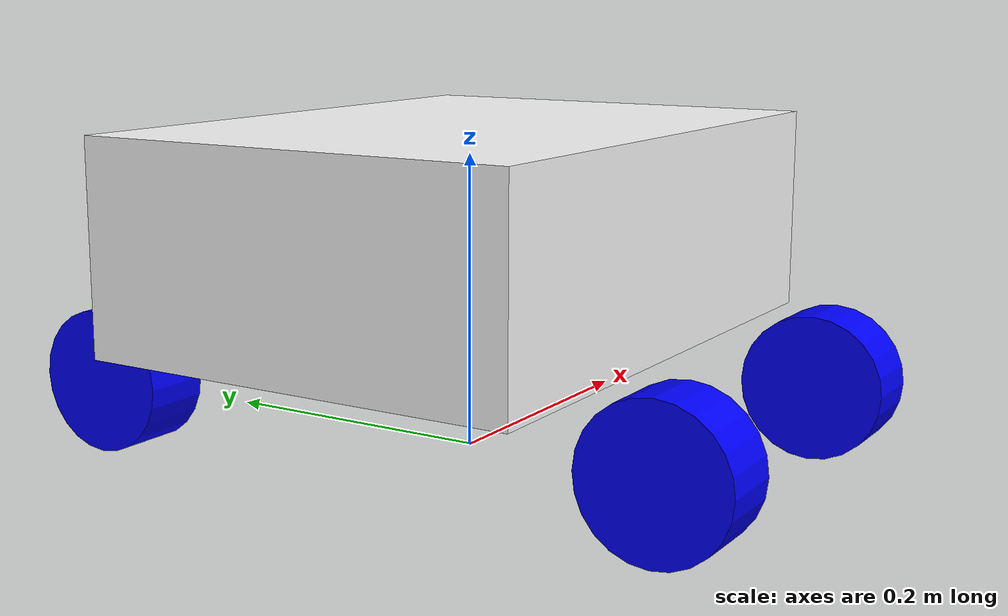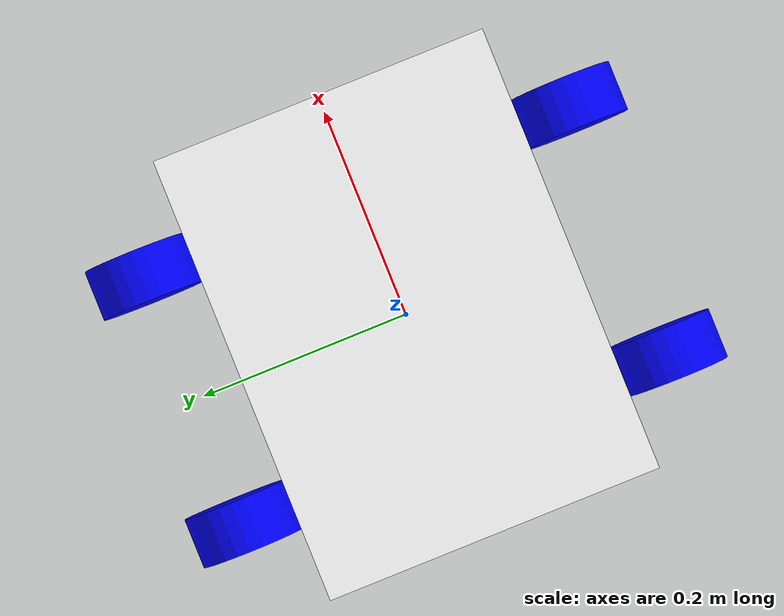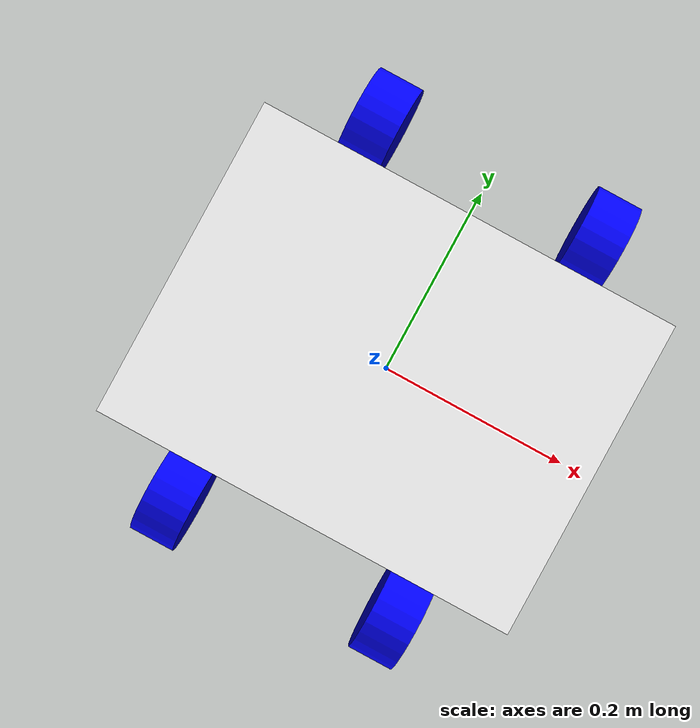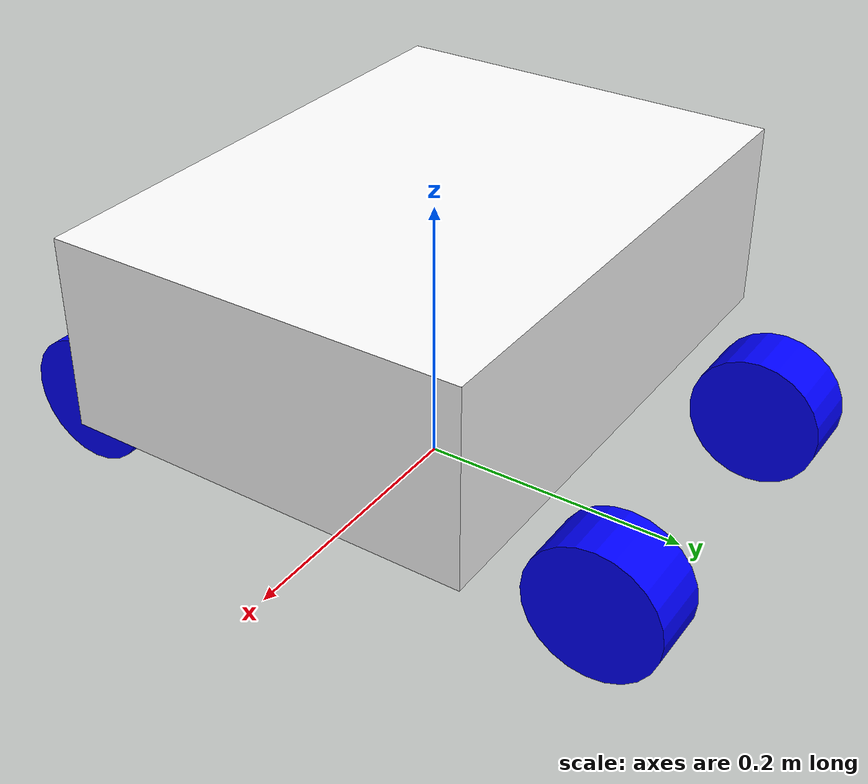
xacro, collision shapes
<?xml version="1.0"?>

<robot name="msds" xmlns:xacro="http://ros.org/wiki/xacro">

  <!-- Properties -->
  <xacro:include filename="properties.xacro" />
  <!-- Start GZ or Ignition depending on ROS 2 Version -->
  <xacro:arg name="is_ignition" default="false"/>
  <!-- Load Simulated or Real Hardware Interfaces -->
  <xacro:arg name="is_sim" default="true"/>
  <!-- Port -->
  <xacro:arg name="port" default="/dev/esp"/>
  <!-- Include Gazebo Parameters -->
  <xacro:include filename="msds_gazebo.xacro" />
  <!-- Include ros2_control Plugins -->
  <xacro:include filename="msds_ros2_control.xacro" />

  <!-- Base Footprint -->
  <link name="base_footprint"/>

  <!-- Chassis -->
  <link name="base_link">
    <xacro:box_inertia m="5.0" l="${2*chassis_length}" w="${2*chassis_width}" h="${2*chassis_height}"
                           xyz="0 0 ${chassis_height / 2.0}" rpy="0 0 0"/>
    <visual>
      <origin xyz="0 0 0" rpy="0 0 0"/>
      <geometry>
        <mesh filename="package://msds_description/meshes/base_link.stl" scale="0.001 0.001 0.001"/>
      </geometry>
      <material name="white"/>
    </visual>
    <collision>
      <geometry>
        <box size="${chassis_length} ${chassis_width} ${chassis_height}"/>
      </geometry>
      <origin xyz="0 0 ${chassis_height / 2}" rpy="0 0 0"/>
    </collision>
  </link>

  <joint name="base_joint" type="fixed">
    <parent link="base_footprint"/>
    <child link="base_link" />
    <origin xyz="0 0 0.081" rpy="0 0 ${pi / 2.0}"/>
  </joint>

  <link name="front_right_wheel_link">
    <xacro:cylinder_inertia m="0.24" r="${wheel_radius}" h="${wheel_width}"
                                    xyz="0 0 0" rpy="${pi / 2.0} 0 0"/>
    <visual>
      <origin xyz="0.2058 0.1199 0.0341" rpy="0 0 0"/>
      <geometry>
        <mesh filename="package://msds_description/meshes/front_right_link.stl" scale="0.001 0.001 0.001"/>
      </geometry>
      <material name="blue"/>
    </visual>
    <collision>
      <geometry>
          <cylinder radius="${wheel_radius}" length="${wheel_width}"/>
      </geometry>
      <origin xyz="0 0 0" rpy="${pi / 2.0} 0 0"/>
    </collision>
  </link>

  <joint name="front_right_wheel_joint" type="continuous">
    <origin xyz="-0.2058 -0.1199 -0.0341" rpy="0 0 0"/>
    <parent link="base_link"/>
    <child link="front_right_wheel_link"/>
    <axis xyz="1 0 0" />
  </joint>

  <link name="front_left_wheel_link">
    <xacro:cylinder_inertia m="0.24" r="${wheel_radius}" h="${wheel_width}"
                                    xyz="0 0 0" rpy="${pi / 2.0} 0 0"/>
    <visual>
      <origin xyz="-0.2058 0.1199 0.0341" rpy="0 0 0"/>
      <geometry>
        <mesh filename="package://msds_description/meshes/front_left_link.stl" scale="0.001 0.001 0.001"/>
      </geometry>
      <material name="blue"/>
    </visual>
    <collision>
      <geometry>
          <cylinder radius="${wheel_radius}" length="${wheel_width}"/>
      </geometry>
      <origin xyz="0 0 0" rpy="${pi / 2.0} 0 0"/>
    </collision>
  </link>

  <joint name="front_left_wheel_joint" type="continuous">
    <origin xyz="0.2058 -0.1199 -0.0341" rpy="0 0 0"/>
    <parent link="base_link"/>
    <child link="front_left_wheel_link"/>
    <axis xyz="1.0 0.0 -0.0"/>
  </joint>

  <link name="rear_right_wheel_link">
    <xacro:cylinder_inertia m="0.24" r="${wheel_radius}" h="${wheel_width}"
                                    xyz="0 0 0" rpy="${pi / 2.0} 0 0"/>
    <visual>
      <origin xyz="0.2058 -0.1199 0.0341" rpy="0 0 0"/>
      <geometry>
        <mesh filename="package://msds_description/meshes/rear_right_link.stl" scale="0.001 0.001 0.001"/>
      </geometry>
      <material name="blue"/>
    </visual>
    <collision>
      <geometry>
          <cylinder radius="${wheel_radius}" length="${wheel_width}"/>
      </geometry>
      <origin xyz="0 0 0" rpy="${pi / 2.0} 0 0"/>
    </collision>
  </link>

  <joint name="rear_right_wheel_joint" type="continuous">
    <origin xyz="-0.2058 0.1199 -0.0341" rpy="0 0 0"/>
    <parent link="base_link"/>
    <child link="rear_right_wheel_link"/>
    <axis xyz="-1.0 0.0 -0.0"/>
  </joint>

  <link name="rear_left_wheel_link">
    <xacro:cylinder_inertia m="0.24" r="${wheel_radius}" h="${wheel_width}"
                                    xyz="0 0 0" rpy="${pi / 2.0} 0 0"/>
    <visual>
      <origin xyz="-0.2058 -0.1199 0.0341" rpy="0 0 0"/>
      <geometry>
        <mesh filename="package://msds_description/meshes/rear_left_link.stl" scale="0.001 0.001 0.001"/>
      </geometry>
      <material name="blue"/>
    </visual>
    <collision>
      <geometry>
          <cylinder radius="${wheel_radius}" length="${wheel_width}"/>
      </geometry>
      <origin xyz="0 0 0" rpy="${pi / 2.0} 0 0"/>
    </collision>
  </link>

  <joint name="rear_left_wheel_joint" type="continuous">
    <origin xyz="0.2058 0.1199 -0.0341" rpy="0 0 0"/>
    <parent link="base_link"/>
    <child link="rear_left_wheel_link"/>
    <axis xyz="-1.0 0.0 0.0"/>
  </joint>

  <link name="imu_link">
    <inertial>
      <origin xyz="-0.020000000000000004 0.0 0.0009205607476635534" rpy="0 0 0"/>
      <mass value="0.010079400000000002"/>
      <inertia ixx="0.0" iyy="1e-06" izz="1e-06" ixy="-0.0" iyz="0.0" ixz="0.0"/>
    </inertial>
    <visual>
      <origin xyz="0.087 -0.055 -0.014" rpy="0 0 0"/>
      <geometry>
        <mesh filename="package://msds_description/meshes/imu_link.stl" scale="0.001 0.001 0.001"/>
      </geometry>
      <material name="dark_grey"/>
    </visual>
    <collision>
      <origin xyz="0.107 -0.06 -0.014" rpy="0 0 0"/>
      <geometry>
        <mesh filename="package://msds_description/meshes/imu_link.stl" scale="0.001 0.001 0.001"/>
      </geometry>
    </collision>
  </link>

  <joint name="imu_joint" type="fixed">
    <origin xyz="-0.087 0.055 0.014" rpy="0 0 0"/>
    <parent link="base_link"/>
    <child link="imu_link"/>
  </joint>

  <link name="laser_link">
    <inertial>
      <origin xyz="-0.05479577138899063 -0.007200165837721026 0.017999309133954644" rpy="0 0 0"/>
      <mass value="0.7855753539396106"/>
      <inertia ixx="0.000268" iyy="0.000268" izz="0.000331" ixy="-0.0" iyz="0.0" ixz="-0.0"/>
    </inertial>
    <visual>
      <origin xyz="-0.0 0.105 -0.08" rpy="0 0 0"/>
      <geometry>
        <mesh filename="package://msds_description/meshes/lidar_link.stl" scale="0.001 0.001 0.001"/>
      </geometry>
      <material name="dark_grey"/>
    </visual>
    <collision>
      <origin xyz="-0.05 0.105 -0.08" rpy="0 0 0"/>
      <geometry>
        <mesh filename="package://msds_description/meshes/lidar_link.stl" scale="0.001 0.001 0.001"/>
      </geometry>
    </collision>
  </link>

  <joint name="laser_joint" type="fixed">
    <origin xyz="0.0 -0.105 0.08" rpy="0 0 -${pi}"/>
    <parent link="base_link"/>
    <child link="laser_link"/>
  </joint>

</robot>

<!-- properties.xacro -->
<robot name="msds" xmlns:xacro="http://ros.org/wiki/xacro">
    <!-- Robot properties -->
    <xacro:property name="chassis_length" value="0.3"/>
    <xacro:property name="chassis_width" value="0.4"/>
    <xacro:property name="chassis_height" value="0.14"/>
    <xacro:property name="wheel_radius" value="0.0485"/>
    <xacro:property name="wheel_width" value="0.0465"/>
    <xacro:property name="lidar_height" value="0.12"/>
    <xacro:property name="imu_height" value="0.08"/>

    <!-- Materials Colors-->
    <material name="blue">
        <color rgba="0.0 0.0 1.0 1.0"/>
    </material>

    <material name="black">
        <color rgba="0 0 0 1"/>
    </material>

    <material name="white">
        <color rgba="1 1 1 1"/>
    </material>

    <material name="silver">
        <color rgba="0.700 0.700 0.700 1.000"/>
    </material>

    <material name="dark_grey">
        <color rgba="0.3 0.3 0.3 1"/>
    </material>

    <material name="orange">
        <color rgba="0.8 0.4 0.0 1.0"/>
    </material>

    <xacro:macro name="cylinder_inertia" params="m r h xyz rpy">
        <inertial>
            <origin xyz="${xyz}" rpy="${rpy}"/>
            <mass value="${m}"/>
            <inertia ixx="${(m/12) * (3 * r**2 + h**2)}" ixy="0" ixz="0"
                     iyy="${(m/12) * (3 * r**2 + h**2)}" iyz="0"
                     izz="${(m/2) * r**2}"/>
        </inertial>
    </xacro:macro>

    <xacro:macro name="box_inertia" params="m l w h xyz rpy">
        <inertial>
            <origin xyz="${xyz}" rpy="${rpy}"/>
            <mass value="${m}"/>
            <inertia ixx="${m * (l**2 + h**2) / 12.0}" ixy="0" ixz="0"
                     iyy="${m * (w**2 + l**2) / 12.0}" iyz="0"
                     izz="${m * (h**2 + w**2) / 12.0}"/>
        </inertial>
    </xacro:macro>

    <!-- Wheel macro -->
    <xacro:macro name="wheel" params="name x y">
        <link name="${name}_wheel_link">
            <visual>
                <geometry>
                    <cylinder radius="${wheel_radius}" length="${wheel_width}"/>
                </geometry>
                <origin xyz="0 0 0" rpy="${pi / 2.0} 0 0"/>
                <material name="blue"/>
            </visual>
            <collision>
                <geometry>
                    <cylinder radius="${wheel_radius}" length="${wheel_width}"/>
                </geometry>
                <origin xyz="0 0 0" rpy="${pi / 2.0} 0 0"/>
            </collision>
            <xacro:cylinder_inertia m="0.152" r="${wheel_radius}" h="${wheel_width}"
                                    xyz="0 0 0" rpy="${pi / 2.0} 0 0"/>
        </link>

        <joint name="${name}_wheel_joint" type="continuous">
            <parent link="base_link"/>
            <child link="${name}_wheel_link"/>
            <origin xyz="${x} ${y} 0" rpy="0 0 0"/>
            <axis xyz="0 1 0"/>
        </joint>

        <gazebo reference="${name}_wheel_link">
            <mu1>1000000000000000.0</mu1>
            <mu2>1000000000000000.0</mu2>
            <kp>1000000000000.0</kp>
            <kd>10.0</kd>
            <minDepth>0.001</minDepth>
            <maxVel>0.1</maxVel>
            <fdir1>1 0 0</fdir1>
        </gazebo>

    </xacro:macro>

</robot>
